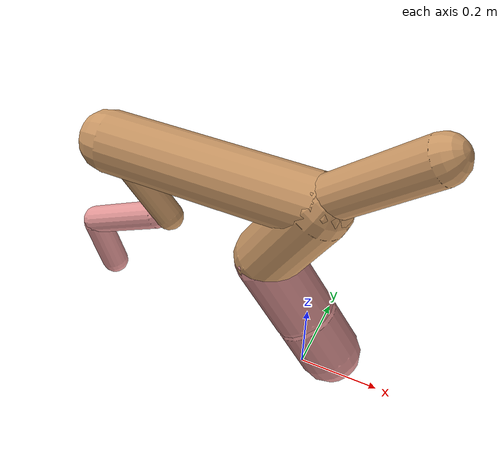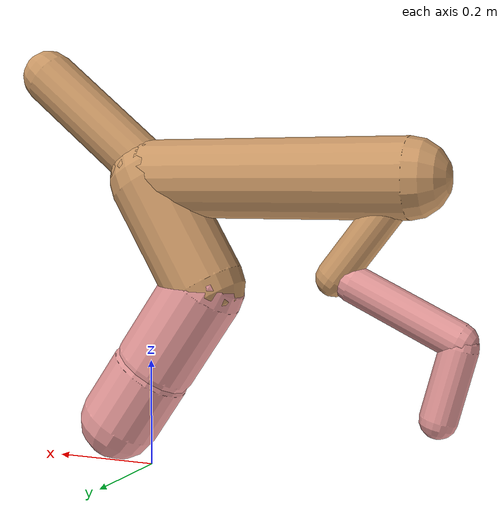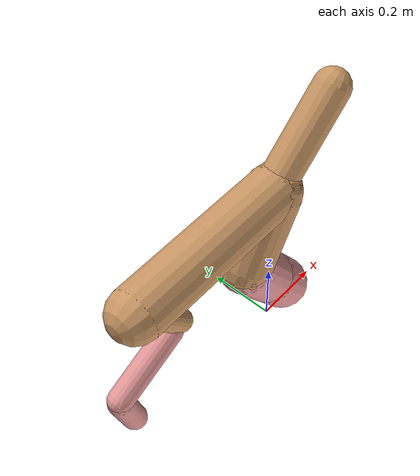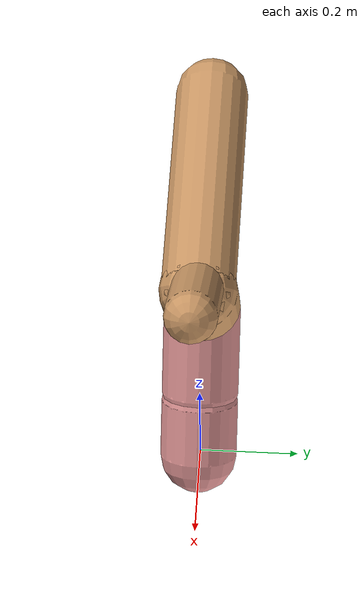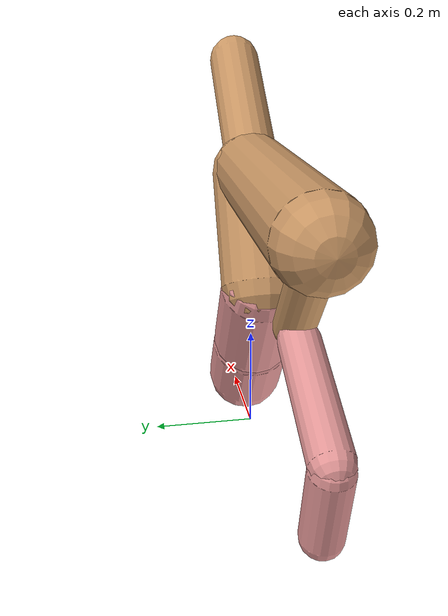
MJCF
<mujoco model="cheetah">
  <compiler angle="radian" coordinate="local" inertiafromgeom="true" settotalmass="14" />
  <default>
    <joint armature=".1" damping=".01" limited="true" solimplimit="0 .8 .03" solreflimit=".02 1" stiffness="8" />
    <geom conaffinity="0" condim="3" contype="1" friction="0.8 .1 .1" rgba="0.8 0.6 .4 1" solimp="0.0 0.8 0.01" solref="0.02 1" />
    <motor ctrllimited="true" ctrlrange="-1 1" />
  </default>
  <size nstack="300000" nuser_geom="1" />
  <option gravity="0 0 -9.81" timestep="0.01" />
  <worldbody>
    <body name="torso" pos="0.0 0.0 0.5452215492089834">
      <joint armature="0" axis="1 0 0" damping="0" limited="false" name="ignorex" pos="0 0 0" stiffness="0" type="slide" />
      <joint armature="0" axis="0 0 1" damping="0" limited="false" name="ignorez" pos="0 0 0" stiffness="0" type="slide" />
      <joint armature="0" axis="0 1 0" damping="0" limited="false" name="ignorey" pos="0 0 0" stiffness="0" type="hinge" />
      <geom fromto="-0.5 0.0 0.0 0.003901979970115932 0.0 0.0" name="torso" size="0.07309142098381251" type="capsule" />
      <geom axisangle="0 1 0 .87" name="head" pos="0.10390197997011585 0.0 0.1" size="0.051544341171045394 0.15" type="capsule" />

      <body name="bthigh" pos="-.5 0 0">
        <joint axis="0 1 0" damping="6" name="bthigh" pos="0 0 0" range="-.52 1.05" stiffness="240" type="hinge" />
        <geom axisangle="0 1 0 -3.8" name="bthigh" pos="0.0734775819030384 0.0 -0.0955208564739499" size="0.034124563037559834 0.10149999999999999" type="capsule" />
        <body name="bshin" pos="0.10695516380607678 0.0 -0.18104171294789978">
          <joint axis="0 1 0" damping="4.5" name="bshin" pos="0 0 0" range="-.785 .785" stiffness="180" type="hinge" />
          <geom axisangle="0 1 0 -2.03" name="bshin" pos="-0.0997507764050038 0.0 -0.0498753882025019" rgba="0.9 0.6 0.6 1" size="0.034124563037559834 0.105" type="capsule" />
          <body name="bfoot" pos="-0.1995015528100076 0.0 -0.0997507764050038">
            <joint axis="0 1 0" damping="3" name="bfoot" pos="0 0 0" range="-.4 .785" stiffness="120" type="hinge" />
            <geom axisangle="0 1 0 -.27" name="bfoot" pos="0.021667753813597694 0.0 -0.07005907066396588" rgba="0.9 0.6 0.6 1" size="0.034124563037559834 0.0658" type="capsule" />
            <inertial mass="10" />
          </body>
        </body>
      </body>
      <body name="fthigh" pos="0.0039019799701158764 0.0 0.0">
        <joint axis="0 1 0" damping="4.5" name="fthigh" pos="0 0 0" range="-1.5 0.8" stiffness="180" type="hinge" />
        <geom axisangle="0 1 0 .52" name="fthigh" pos="-0.05915015260986387 0.0 -0.10140026161690949" size="0.07727819862152606 0.11146701469120796" type="capsule" />
        <body name="fshin" pos="-0.11830030521972774 0.0 -0.20280052323381897">
          <joint axis="0 1 0" damping="3" name="fshin" pos="0 0 0" range="-1.2 1.1" stiffness="120" type="hinge" />
          <geom axisangle="0 1 0 -.6" name="fshin" pos="0.05495202927516608 0.0 -0.07608742515022995" rgba="0.9 0.6 0.6 1" size="0.07727819862152606 0.08883837261103791" type="capsule" />
          <body name="ffoot" pos="0.10990405855033215 0.0 -0.1521748503004599">
            <joint axis="0 1 0" damping="1.5" name="ffoot" pos="0 0 0" range="-3.1 -0.3" stiffness="60" type="hinge" />
            <geom axisangle="0 1 0 -.6" name="ffoot" pos="0.038871513016120345 0.0 -0.060466798025076096" rgba="0.9 0.6 0.6 1" size="0.07727819862152606 0.05866684983747788" type="capsule" />
            <inertial mass="10" />
          </body>
        </body>
      </body>
    </body>
  </worldbody>
  <actuator>
    <motor gear="120" joint="bthigh" name="bthigh" />
    <motor gear="90" joint="bshin" name="bshin" />
    <motor gear="60" joint="bfoot" name="bfoot" />
    <motor gear="120" joint="fthigh" name="fthigh" />
    <motor gear="60" joint="fshin" name="fshin" />
    <motor gear="30" joint="ffoot" name="ffoot" />
  </actuator>
</mujoco>
